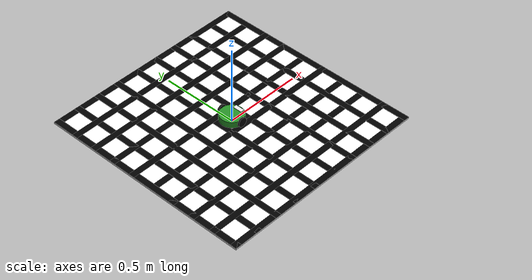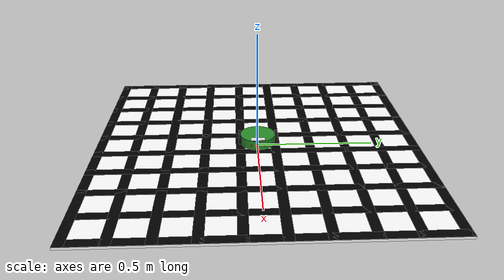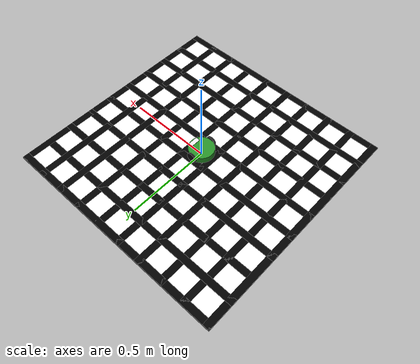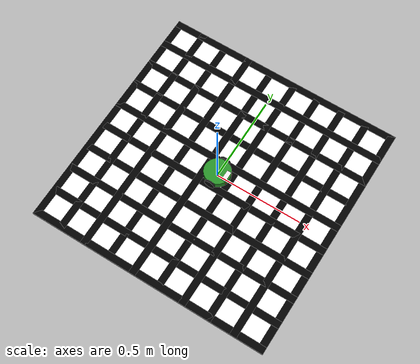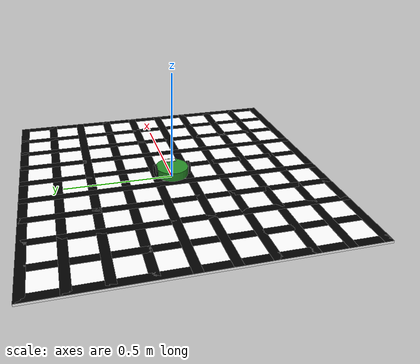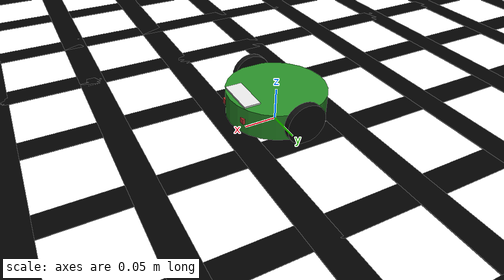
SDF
<?xml version="1.0" ?>
<sdf version="1.7">
  <world name="alphabot2_cross_board_10x10">
    <gravity>0 0 -9.8</gravity>

    <scene>
      <ambient>0.9 0.9 0.9 1</ambient>
      <background>0.7 0.7 0.7 1</background>
      <shadows>false</shadows>
    </scene>

    <light name="sun" type="directional">
      <cast_shadows>false</cast_shadows>
      <pose>0 0 10 0 0 0</pose>
      <diffuse>0.9 0.9 0.9 1</diffuse>
      <specular>0.2 0.2 0.2 1</specular>
      <attenuation>
        <range>1000</range>
        <constant>0.9</constant>
        <linear>0.01</linear>
        <quadratic>0.001</quadratic>
      </attenuation>
      <direction>-0.4 0.2 -0.9</direction>
    </light>

    <plugin filename="gz-sim-physics-system" name="gz::sim::systems::Physics"/>
    <plugin filename="gz-sim-user-commands-system" name="gz::sim::systems::UserCommands"/>
    <plugin filename="gz-sim-scene-broadcaster-system" name="gz::sim::systems::SceneBroadcaster"/>
    <plugin filename="gz-sim-sensors-system" name="gz::sim::systems::Sensors">
      <render_engine>ogre2</render_engine>
    </plugin>

    <!--
      Board spec:
      - 10 horizontal roads
      - 10 vertical roads
      - road width = 0.04 m
      - center-to-center spacing = 0.15 m
      - resulting grid footprint = 1.39 m x 1.39 m
    -->
    <model name="cross_board_10x10">
      <static>true</static>
      <pose>0 0 0 0 0 0</pose>

      <link name="board_link">
        <collision name="base_collision">
          <pose>0 0 0.005 0 0 0</pose>
          <geometry>
            <box>
              <size>1.39 1.39 0.01</size>
            </box>
          </geometry>
          <surface>
            <friction>
              <ode>
                <mu>1.5</mu>
                <mu2>1.5</mu2>
              </ode>
            </friction>
          </surface>
        </collision>

        <visual name="base_visual">
          <pose>0 0 0.005 0 0 0</pose>
          <geometry>
            <box>
              <size>1.39 1.39 0.01</size>
            </box>
          </geometry>
          <material>
            <ambient>1 1 1 1</ambient>
            <diffuse>1 1 1 1</diffuse>
            <specular>0.1 0.1 0.1 1</specular>
          </material>
        </visual>

        <visual name="horizontal_01">
          <pose>0 -0.675 0.0106 0 0 0</pose>
          <geometry>
            <box>
              <size>1.39 0.04 0.001</size>
            </box>
          </geometry>
          <material>
            <ambient>0 0 0 1</ambient>
            <diffuse>0 0 0 1</diffuse>
          </material>
        </visual>
        <visual name="horizontal_02">
          <pose>0 -0.525 0.0106 0 0 0</pose>
          <geometry>
            <box>
              <size>1.39 0.04 0.001</size>
            </box>
          </geometry>
          <material>
            <ambient>0 0 0 1</ambient>
            <diffuse>0 0 0 1</diffuse>
          </material>
        </visual>
        <visual name="horizontal_03">
          <pose>0 -0.375 0.0106 0 0 0</pose>
          <geometry>
            <box>
              <size>1.39 0.04 0.001</size>
            </box>
          </geometry>
          <material>
            <ambient>0 0 0 1</ambient>
            <diffuse>0 0 0 1</diffuse>
          </material>
        </visual>
        <visual name="horizontal_04">
          <pose>0 -0.225 0.0106 0 0 0</pose>
          <geometry>
            <box>
              <size>1.39 0.04 0.001</size>
            </box>
          </geometry>
          <material>
            <ambient>0 0 0 1</ambient>
            <diffuse>0 0 0 1</diffuse>
          </material>
        </visual>
        <visual name="horizontal_05">
          <pose>0 -0.075 0.0106 0 0 0</pose>
          <geometry>
            <box>
              <size>1.39 0.04 0.001</size>
            </box>
          </geometry>
          <material>
            <ambient>0 0 0 1</ambient>
            <diffuse>0 0 0 1</diffuse>
          </material>
        </visual>
        <visual name="horizontal_06">
          <pose>0 0.075 0.0106 0 0 0</pose>
          <geometry>
            <box>
              <size>1.39 0.04 0.001</size>
            </box>
          </geometry>
          <material>
            <ambient>0 0 0 1</ambient>
            <diffuse>0 0 0 1</diffuse>
          </material>
        </visual>
        <visual name="horizontal_07">
          <pose>0 0.225 0.0106 0 0 0</pose>
          <geometry>
            <box>
              <size>1.39 0.04 0.001</size>
            </box>
          </geometry>
          <material>
            <ambient>0 0 0 1</ambient>
            <diffuse>0 0 0 1</diffuse>
          </material>
        </visual>
        <visual name="horizontal_08">
          <pose>0 0.375 0.0106 0 0 0</pose>
          <geometry>
            <box>
              <size>1.39 0.04 0.001</size>
            </box>
          </geometry>
          <material>
            <ambient>0 0 0 1</ambient>
            <diffuse>0 0 0 1</diffuse>
          </material>
        </visual>
        <visual name="horizontal_09">
          <pose>0 0.525 0.0106 0 0 0</pose>
          <geometry>
            <box>
              <size>1.39 0.04 0.001</size>
            </box>
          </geometry>
          <material>
            <ambient>0 0 0 1</ambient>
            <diffuse>0 0 0 1</diffuse>
          </material>
        </visual>
        <visual name="horizontal_10">
          <pose>0 0.675 0.0106 0 0 0</pose>
          <geometry>
            <box>
              <size>1.39 0.04 0.001</size>
            </box>
          </geometry>
          <material>
            <ambient>0 0 0 1</ambient>
            <diffuse>0 0 0 1</diffuse>
          </material>
        </visual>

        <visual name="vertical_01">
          <pose>-0.675 0 0.0106 0 0 0</pose>
          <geometry>
            <box>
              <size>0.04 1.39 0.001</size>
            </box>
          </geometry>
          <material>
            <ambient>0 0 0 1</ambient>
            <diffuse>0 0 0 1</diffuse>
          </material>
        </visual>
        <visual name="vertical_02">
          <pose>-0.525 0 0.0106 0 0 0</pose>
          <geometry>
            <box>
              <size>0.04 1.39 0.001</size>
            </box>
          </geometry>
          <material>
            <ambient>0 0 0 1</ambient>
            <diffuse>0 0 0 1</diffuse>
          </material>
        </visual>
        <visual name="vertical_03">
          <pose>-0.375 0 0.0106 0 0 0</pose>
          <geometry>
            <box>
              <size>0.04 1.39 0.001</size>
            </box>
          </geometry>
          <material>
            <ambient>0 0 0 1</ambient>
            <diffuse>0 0 0 1</diffuse>
          </material>
        </visual>
        <visual name="vertical_04">
          <pose>-0.225 0 0.0106 0 0 0</pose>
          <geometry>
            <box>
              <size>0.04 1.39 0.001</size>
            </box>
          </geometry>
          <material>
            <ambient>0 0 0 1</ambient>
            <diffuse>0 0 0 1</diffuse>
          </material>
        </visual>
        <visual name="vertical_05">
          <pose>-0.075 0 0.0106 0 0 0</pose>
          <geometry>
            <box>
              <size>0.04 1.39 0.001</size>
            </box>
          </geometry>
          <material>
            <ambient>0 0 0 1</ambient>
            <diffuse>0 0 0 1</diffuse>
          </material>
        </visual>
        <visual name="vertical_06">
          <pose>0.075 0 0.0106 0 0 0</pose>
          <geometry>
            <box>
              <size>0.04 1.39 0.001</size>
            </box>
          </geometry>
          <material>
            <ambient>0 0 0 1</ambient>
            <diffuse>0 0 0 1</diffuse>
          </material>
        </visual>
        <visual name="vertical_07">
          <pose>0.225 0 0.0106 0 0 0</pose>
          <geometry>
            <box>
              <size>0.04 1.39 0.001</size>
            </box>
          </geometry>
          <material>
            <ambient>0 0 0 1</ambient>
            <diffuse>0 0 0 1</diffuse>
          </material>
        </visual>
        <visual name="vertical_08">
          <pose>0.375 0 0.0106 0 0 0</pose>
          <geometry>
            <box>
              <size>0.04 1.39 0.001</size>
            </box>
          </geometry>
          <material>
            <ambient>0 0 0 1</ambient>
            <diffuse>0 0 0 1</diffuse>
          </material>
        </visual>
        <visual name="vertical_09">
          <pose>0.525 0 0.0106 0 0 0</pose>
          <geometry>
            <box>
              <size>0.04 1.39 0.001</size>
            </box>
          </geometry>
          <material>
            <ambient>0 0 0 1</ambient>
            <diffuse>0 0 0 1</diffuse>
          </material>
        </visual>
        <visual name="vertical_10">
          <pose>0.675 0 0.0106 0 0 0</pose>
          <geometry>
            <box>
              <size>0.04 1.39 0.001</size>
            </box>
          </geometry>
          <material>
            <ambient>0 0 0 1</ambient>
            <diffuse>0 0 0 1</diffuse>
          </material>
        </visual>
      </link>
    </model>

    <model name="alphabot2">
      <pose>0 0 0.01 0 0 0</pose>
      <self_collide>false</self_collide>
      <allow_auto_disable>false</allow_auto_disable>

      <link name="chassis_link">
        <inertial>
          <mass>0.50</mass>
          <inertia>
            <ixx>0.00072</ixx>
            <iyy>0.00072</iyy>
            <izz>0.00141</izz>
            <ixy>0</ixy>
            <ixz>0</ixz>
            <iyz>0</iyz>
          </inertia>
        </inertial>

        <collision name="chassis_collision">
          <pose>0 0 0.015 0 0 0</pose>
          <geometry>
            <cylinder>
              <radius>0.075</radius>
              <length>0.02</length>
            </cylinder>
          </geometry>
          <surface>
            <friction>
              <ode>
                <mu>1.0</mu>
                <mu2>1.0</mu2>
              </ode>
            </friction>
          </surface>
        </collision>

        <visual name="chassis_visual">
          <pose>0 0 0.025 0 0 0</pose>
          <geometry>
            <cylinder>
              <radius>0.075</radius>
              <length>0.04</length>
            </cylinder>
          </geometry>
          <material>
            <ambient>0.15 0.55 0.15 1</ambient>
            <diffuse>0.15 0.55 0.15 1</diffuse>
            <specular>0.1 0.1 0.1 1</specular>
          </material>
        </visual>

        <visual name="front_marker_visual">
          <pose>0.055 0 0.045 0 0 0</pose>
          <geometry>
            <box>
              <size>0.025 0.06 0.005</size>
            </box>
          </geometry>
          <material>
            <ambient>0.9 0.9 0.9 1</ambient>
            <diffuse>0.9 0.9 0.9 1</diffuse>
          </material>
        </visual>

        <visual name="left_wheel_visual">
          <pose>0 0.078 0.03 1.5708 0 0</pose>
          <geometry>
            <cylinder>
              <radius>0.03</radius>
              <length>0.01</length>
            </cylinder>
          </geometry>
          <material>
            <ambient>0.05 0.05 0.05 1</ambient>
            <diffuse>0.05 0.05 0.05 1</diffuse>
          </material>
        </visual>

        <visual name="right_wheel_visual">
          <pose>0 -0.078 0.03 1.5708 0 0</pose>
          <geometry>
            <cylinder>
              <radius>0.03</radius>
              <length>0.01</length>
            </cylinder>
          </geometry>
          <material>
            <ambient>0.05 0.05 0.05 1</ambient>
            <diffuse>0.05 0.05 0.05 1</diffuse>
          </material>
        </visual>

        <visual name="rear_caster_visual">
          <pose>-0.045 0 0.01 0 0 0</pose>
          <geometry>
            <sphere>
              <radius>0.01</radius>
            </sphere>
          </geometry>
          <material>
            <ambient>0.6 0.6 0.6 1</ambient>
            <diffuse>0.6 0.6 0.6 1</diffuse>
          </material>
        </visual>
      </link>

      <link name="left_obstacle_sensor_link">
        <pose>0.067 0.028 0.025 0 0 0</pose>
        <inertial>
          <mass>0.001</mass>
          <inertia>
            <ixx>0.000001</ixx>
            <iyy>0.000001</iyy>
            <izz>0.000001</izz>
            <ixy>0</ixy>
            <ixz>0</ixz>
            <iyz>0</iyz>
          </inertia>
        </inertial>
        <visual name="left_obstacle_sensor_visual">
          <geometry>
            <box>
              <size>0.008 0.008 0.008</size>
            </box>
          </geometry>
          <material>
            <ambient>0.8 0.2 0.2 1</ambient>
            <diffuse>0.8 0.2 0.2 1</diffuse>
          </material>
        </visual>
        <sensor name="left_obstacle_sensor" type="lidar">
          <always_on>true</always_on>
          <update_rate>20</update_rate>
          <visualize>true</visualize>
          <topic>/alphabot2/sensors/obstacle_left/range</topic>
          <lidar>
            <scan>
              <horizontal>
                <samples>1</samples>
                <resolution>1</resolution>
                <min_angle>0</min_angle>
                <max_angle>0</max_angle>
              </horizontal>
              <vertical>
                <samples>1</samples>
                <resolution>1</resolution>
                <min_angle>0</min_angle>
                <max_angle>0</max_angle>
              </vertical>
            </scan>
            <range>
              <min>0.01</min>
              <max>0.07</max>
              <resolution>0.001</resolution>
            </range>
          </lidar>
        </sensor>
      </link>

      <link name="right_obstacle_sensor_link">
        <pose>0.067 -0.028 0.025 0 0 0</pose>
        <inertial>
          <mass>0.001</mass>
          <inertia>
            <ixx>0.000001</ixx>
            <iyy>0.000001</iyy>
            <izz>0.000001</izz>
            <ixy>0</ixy>
            <ixz>0</ixz>
            <iyz>0</iyz>
          </inertia>
        </inertial>
        <visual name="right_obstacle_sensor_visual">
          <geometry>
            <box>
              <size>0.008 0.008 0.008</size>
            </box>
          </geometry>
          <material>
            <ambient>0.8 0.2 0.2 1</ambient>
            <diffuse>0.8 0.2 0.2 1</diffuse>
          </material>
        </visual>
        <sensor name="right_obstacle_sensor" type="lidar">
          <always_on>true</always_on>
          <update_rate>20</update_rate>
          <visualize>true</visualize>
          <topic>/alphabot2/sensors/obstacle_right/range</topic>
          <lidar>
            <scan>
              <horizontal>
                <samples>1</samples>
                <resolution>1</resolution>
                <min_angle>0</min_angle>
                <max_angle>0</max_angle>
              </horizontal>
              <vertical>
                <samples>1</samples>
                <resolution>1</resolution>
                <min_angle>0</min_angle>
                <max_angle>0</max_angle>
              </vertical>
            </scan>
            <range>
              <min>0.01</min>
              <max>0.07</max>
              <resolution>0.001</resolution>
            </range>
          </lidar>
        </sensor>
      </link>

      <link name="line_sensor_1_link">
        <pose>0.055 0.040 0.005 0 1.5708 0</pose>
        <inertial>
          <mass>0.001</mass>
          <inertia>
            <ixx>0.000001</ixx>
            <iyy>0.000001</iyy>
            <izz>0.000001</izz>
            <ixy>0</ixy>
            <ixz>0</ixz>
            <iyz>0</iyz>
          </inertia>
        </inertial>
        <visual name="line_sensor_1_visual">
          <geometry>
            <box>
              <size>0.006 0.006 0.003</size>
            </box>
          </geometry>
          <material>
            <ambient>0.2 0.2 0.7 1</ambient>
            <diffuse>0.2 0.2 0.7 1</diffuse>
          </material>
        </visual>
        <sensor name="line_sensor_1" type="camera">
          <always_on>true</always_on>
          <update_rate>20</update_rate>
          <visualize>false</visualize>
          <topic>/alphabot2/sensors/line_1/image</topic>
          <camera>
            <horizontal_fov>0.20</horizontal_fov>
            <image>
              <width>1</width>
              <height>1</height>
              <format>R8G8B8</format>
            </image>
            <clip>
              <near>0.001</near>
              <far>0.10</far>
            </clip>
          </camera>
        </sensor>
      </link>

      <link name="line_sensor_2_link">
        <pose>0.055 0.020 0.005 0 1.5708 0</pose>
        <inertial>
          <mass>0.001</mass>
          <inertia>
            <ixx>0.000001</ixx>
            <iyy>0.000001</iyy>
            <izz>0.000001</izz>
            <ixy>0</ixy>
            <ixz>0</ixz>
            <iyz>0</iyz>
          </inertia>
        </inertial>
        <visual name="line_sensor_2_visual">
          <geometry>
            <box>
              <size>0.006 0.006 0.003</size>
            </box>
          </geometry>
          <material>
            <ambient>0.2 0.2 0.7 1</ambient>
            <diffuse>0.2 0.2 0.7 1</diffuse>
          </material>
        </visual>
        <sensor name="line_sensor_2" type="camera">
          <always_on>true</always_on>
          <update_rate>20</update_rate>
          <visualize>false</visualize>
          <topic>/alphabot2/sensors/line_2/image</topic>
          <camera>
            <horizontal_fov>0.20</horizontal_fov>
            <image>
              <width>1</width>
              <height>1</height>
              <format>R8G8B8</format>
            </image>
            <clip>
              <near>0.001</near>
              <far>0.10</far>
            </clip>
          </camera>
        </sensor>
      </link>

      <link name="line_sensor_3_link">
        <pose>0.055 0.000 0.005 0 1.5708 0</pose>
        <inertial>
          <mass>0.001</mass>
          <inertia>
            <ixx>0.000001</ixx>
            <iyy>0.000001</iyy>
            <izz>0.000001</izz>
            <ixy>0</ixy>
            <ixz>0</ixz>
            <iyz>0</iyz>
          </inertia>
        </inertial>
        <visual name="line_sensor_3_visual">
          <geometry>
            <box>
              <size>0.006 0.006 0.003</size>
            </box>
          </geometry>
          <material>
            <ambient>0.2 0.2 0.7 1</ambient>
            <diffuse>0.2 0.2 0.7 1</diffuse>
          </material>
        </visual>
        <sensor name="line_sensor_3" type="camera">
          <always_on>true</always_on>
          <update_rate>20</update_rate>
          <visualize>false</visualize>
          <topic>/alphabot2/sensors/line_3/image</topic>
          <camera>
            <horizontal_fov>0.20</horizontal_fov>
            <image>
              <width>1</width>
              <height>1</height>
              <format>R8G8B8</format>
            </image>
            <clip>
              <near>0.001</near>
              <far>0.10</far>
            </clip>
          </camera>
        </sensor>
      </link>

      <link name="line_sensor_4_link">
        <pose>0.055 -0.020 0.005 0 1.5708 0</pose>
        <inertial>
          <mass>0.001</mass>
          <inertia>
            <ixx>0.000001</ixx>
            <iyy>0.000001</iyy>
            <izz>0.000001</izz>
            <ixy>0</ixy>
            <ixz>0</ixz>
            <iyz>0</iyz>
          </inertia>
        </inertial>
        <visual name="line_sensor_4_visual">
          <geometry>
            <box>
              <size>0.006 0.006 0.003</size>
            </box>
          </geometry>
          <material>
            <ambient>0.2 0.2 0.7 1</ambient>
            <diffuse>0.2 0.2 0.7 1</diffuse>
          </material>
        </visual>
        <sensor name="line_sensor_4" type="camera">
          <always_on>true</always_on>
          <update_rate>20</update_rate>
          <visualize>false</visualize>
          <topic>/alphabot2/sensors/line_4/image</topic>
          <camera>
            <horizontal_fov>0.20</horizontal_fov>
            <image>
              <width>1</width>
              <height>1</height>
              <format>R8G8B8</format>
            </image>
            <clip>
              <near>0.001</near>
              <far>0.10</far>
            </clip>
          </camera>
        </sensor>
      </link>

      <link name="line_sensor_5_link">
        <pose>0.055 -0.040 0.005 0 1.5708 0</pose>
        <inertial>
          <mass>0.001</mass>
          <inertia>
            <ixx>0.000001</ixx>
            <iyy>0.000001</iyy>
            <izz>0.000001</izz>
            <ixy>0</ixy>
            <ixz>0</ixz>
            <iyz>0</iyz>
          </inertia>
        </inertial>
        <visual name="line_sensor_5_visual">
          <geometry>
            <box>
              <size>0.006 0.006 0.003</size>
            </box>
          </geometry>
          <material>
            <ambient>0.2 0.2 0.7 1</ambient>
            <diffuse>0.2 0.2 0.7 1</diffuse>
          </material>
        </visual>
        <sensor name="line_sensor_5" type="camera">
          <always_on>true</always_on>
          <update_rate>20</update_rate>
          <visualize>false</visualize>
          <topic>/alphabot2/sensors/line_5/image</topic>
          <camera>
            <horizontal_fov>0.20</horizontal_fov>
            <image>
              <width>1</width>
              <height>1</height>
              <format>R8G8B8</format>
            </image>
            <clip>
              <near>0.001</near>
              <far>0.10</far>
            </clip>
          </camera>
        </sensor>
      </link>

      <joint name="left_obstacle_sensor_joint" type="fixed">
        <parent>chassis_link</parent>
        <child>left_obstacle_sensor_link</child>
      </joint>

      <joint name="right_obstacle_sensor_joint" type="fixed">
        <parent>chassis_link</parent>
        <child>right_obstacle_sensor_link</child>
      </joint>

      <joint name="line_sensor_1_joint" type="fixed">
        <parent>chassis_link</parent>
        <child>line_sensor_1_link</child>
      </joint>

      <joint name="line_sensor_2_joint" type="fixed">
        <parent>chassis_link</parent>
        <child>line_sensor_2_link</child>
      </joint>

      <joint name="line_sensor_3_joint" type="fixed">
        <parent>chassis_link</parent>
        <child>line_sensor_3_link</child>
      </joint>

      <joint name="line_sensor_4_joint" type="fixed">
        <parent>chassis_link</parent>
        <child>line_sensor_4_link</child>
      </joint>

      <joint name="line_sensor_5_joint" type="fixed">
        <parent>chassis_link</parent>
        <child>line_sensor_5_link</child>
      </joint>
    </model>
  </world>
</sdf>
